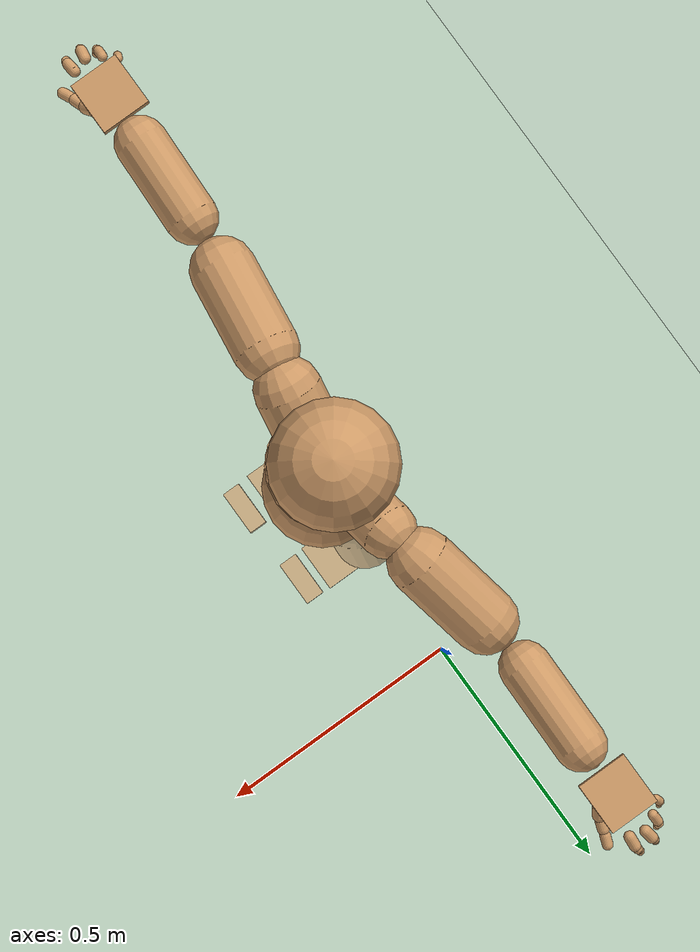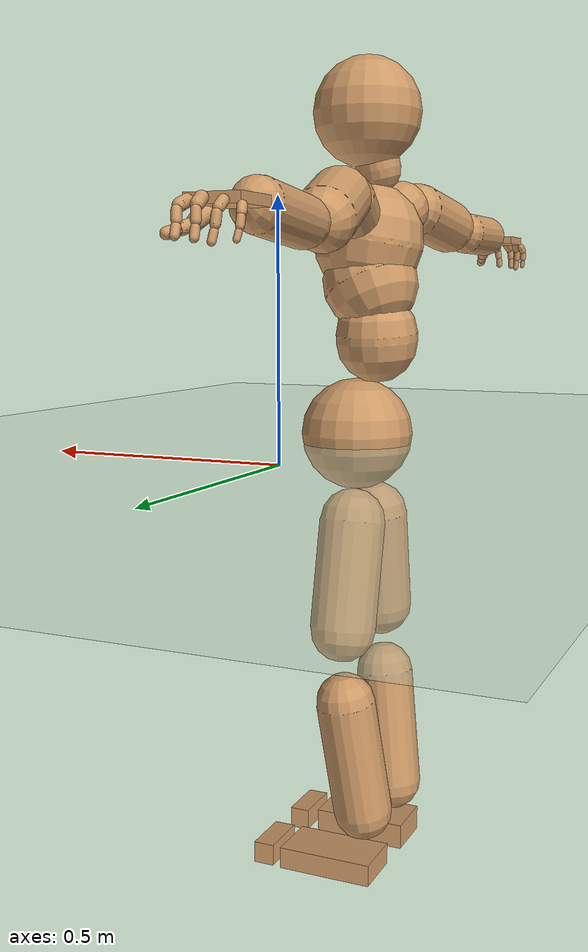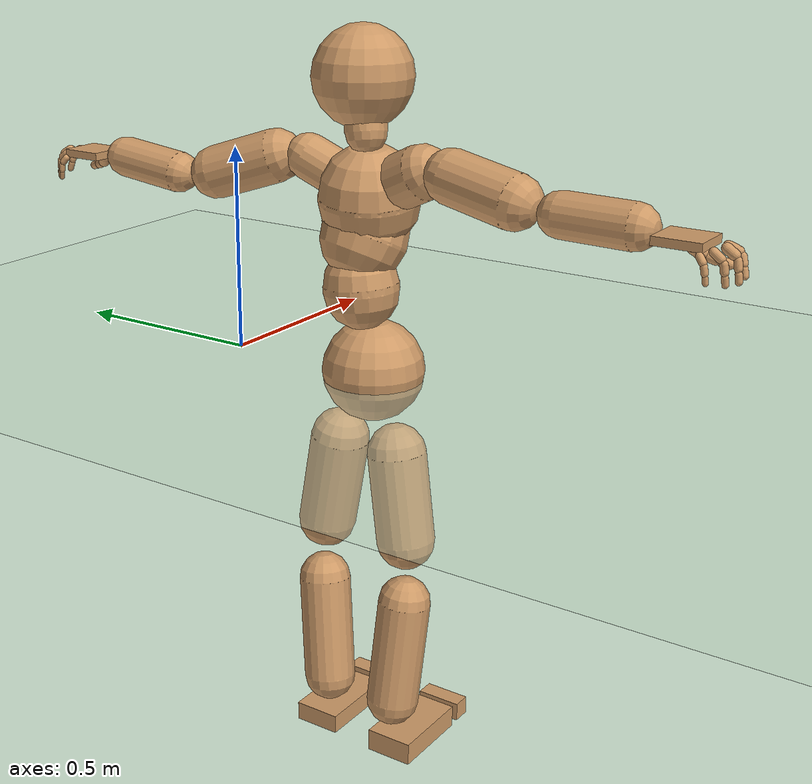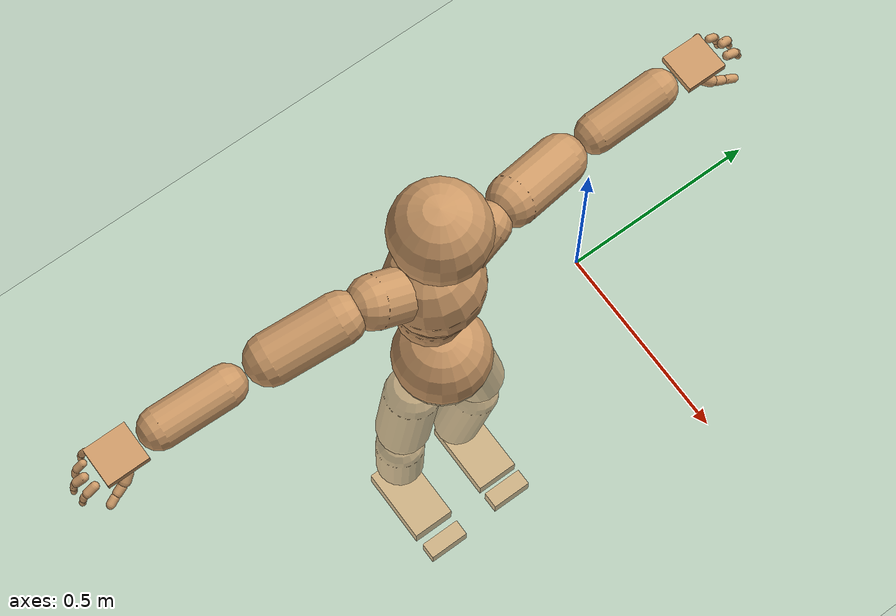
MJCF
<mujoco model="humanoid">
  <compiler coordinate="local"/>
  <default>
    <joint damping="0.0" armature="0.01" stiffness="0.0" limited="true"/>
    <geom conaffinity="1" condim="3" contype="7" margin="0.001" rgba="0.8 0.6 .4 1"/>
  </default>
  <asset>
    <texture type="skybox" builtin="gradient" rgb1=".4 .5 .6" rgb2="0 0 0" width="100" height="100"/>
    <texture builtin="flat" height="1278" mark="cross" markrgb="1 1 1" name="texgeom" random="0.01" rgb1="0.8 0.6 0.4" rgb2="0.8 0.6 0.4" type="cube" width="127"/>
    <texture builtin="checker" height="100" name="texplane" rgb1="0 0 0" rgb2="0.8 0.8 0.8" type="2d" width="100"/>
    <material name="MatPlane" reflectance="0.5" shininess="1" specular="1" texrepeat="60 60" texture="texplane"/>
    <material name="geom" texture="texgeom" texuniform="true"/>
  </asset>
  <worldbody>
    <light cutoff="100" diffuse="1 1 1" dir="-0 0 -1.3" directional="true" exponent="1" pos="0 0 1.3" specular=".1 .1 .1"/>
    <geom conaffinity="1" condim="3" name="floor" pos="0 0 0" rgba="0.8 0.9 0.8 1" size="100 100 .2" type="plane" material="MatPlane"/>
    <body name="Pelvis" pos="0.0019 -0.3994 0.0187">
      <freejoint name="Pelvis"/>
      <geom type="sphere" contype="1" conaffinity="1" density="500" size="0.1220" pos="0.0000 0.0000 0.0000" name="Pelvis"/>
      <body name="L_Hip" pos="-0.0244 0.0655 -0.1033">
        <joint name="L_Hip_x" type="hinge" pos="0 0 0" axis="1 0 0" user="250 2.5 1 500 10 2" armature="0.01" range="-180.0000 180.0000" damping="0" stiffness="0"/>
        <joint name="L_Hip_y" type="hinge" pos="0 0 0" axis="0 1 0" user="250 2.5 1 500 10 2" armature="0.01" range="-180.0000 180.0000" damping="0" stiffness="0"/>
        <joint name="L_Hip_z" type="hinge" pos="0 0 0" axis="0 0 1" user="250 2.5 1 500 10 2" armature="0.01" range="-180.0000 180.0000" damping="0" stiffness="0"/>
        <geom type="capsule" contype="1" conaffinity="1" density="500" fromto="0.0012 0.0141 -0.0769 0.0050 0.0564 -0.3074" size="0.0709" name="L_Hip"/>
        <body name="L_Knee" pos="0.0062 0.0706 -0.3843">
          <joint name="L_Knee_x" type="hinge" pos="0 0 0" axis="1 0 0" user="250 2.5 1 500 10 2" armature="0.01" range="-180.0000 180.0000" damping="0" stiffness="0"/>
          <joint name="L_Knee_y" type="hinge" pos="0 0 0" axis="0 1 0" user="250 2.5 1 500 10 2" armature="0.01" range="-180.0000 180.0000" damping="0" stiffness="0"/>
          <joint name="L_Knee_z" type="hinge" pos="0 0 0" axis="0 0 1" user="250 2.5 1 500 10 2" armature="0.01" range="-180.0000 180.0000" damping="0" stiffness="0"/>
          <geom type="capsule" contype="1" conaffinity="1" density="500" fromto="-0.0095 -0.0115 -0.0853 -0.0382 -0.0459 -0.3411" size="0.0643" name="L_Knee"/>
          <body name="L_Ankle" pos="-0.0477 -0.0574 -0.4264">
            <joint name="L_Ankle_x" type="hinge" pos="0 0 0" axis="1 0 0" user="150 2.5 1 500 10 2" armature="0.01" range="-180.0000 180.0000" damping="0" stiffness="0"/>
            <joint name="L_Ankle_y" type="hinge" pos="0 0 0" axis="0 1 0" user="150 2.5 1 500 10 2" armature="0.01" range="-180.0000 180.0000" damping="0" stiffness="0"/>
            <joint name="L_Ankle_z" type="hinge" pos="0 0 0" axis="0 0 1" user="150 2.5 1 500 10 2" armature="0.01" range="-180.0000 180.0000" damping="0" stiffness="0"/>
            <geom type="box" contype="1" conaffinity="1" density="500" pos="0.0734 0.0245 -0.0311" size="0.1053 0.0589 0.0237" quat="1.0000 0.0000 0.0000 0.0000" name="L_Ankle"/>
            <body name="L_Toe" pos="0.1468 0.0491 -0.0621">
              <joint name="L_Toe_x" type="hinge" pos="0 0 0" axis="1 0 0" user="150 1 1 500 1 1" armature="0.01" range="-180.0000 180.0000" damping="0" stiffness="0"/>
              <joint name="L_Toe_y" type="hinge" pos="0 0 0" axis="0 1 0" user="150 1 1 500 1 1" armature="0.01" range="-180.0000 180.0000" damping="0" stiffness="0"/>
              <joint name="L_Toe_z" type="hinge" pos="0 0 0" axis="0 0 1" user="150 1 1 500 1 1" armature="0.01" range="-180.0000 180.0000" damping="0" stiffness="0"/>
              <geom type="box" contype="1" conaffinity="1" density="500" pos="0.0744 -0.0245 0.0311" size="0.0234 0.0567 0.0237" quat="1.0000 0.0000 0.0000 0.0000" name="L_Toe"/>
            </body>
          </body>
        </body>
      </body>
      <body name="R_Hip" pos="-0.0152 -0.068 -0.1155">
        <joint name="R_Hip_x" type="hinge" pos="0 0 0" axis="1 0 0" user="250 2.5 1 500 10 2" armature="0.01" range="-180.0000 180.0000" damping="0" stiffness="0"/>
        <joint name="R_Hip_y" type="hinge" pos="0 0 0" axis="0 1 0" user="250 2.5 1 500 10 2" armature="0.01" range="-180.0000 180.0000" damping="0" stiffness="0"/>
        <joint name="R_Hip_z" type="hinge" pos="0 0 0" axis="0 0 1" user="250 2.5 1 500 10 2" armature="0.01" range="-180.0000 180.0000" damping="0" stiffness="0"/>
        <geom type="capsule" contype="1" conaffinity="1" density="500" fromto="-0.0008 -0.0101 -0.0734 -0.0031 -0.0404 -0.2934" size="0.0709" name="R_Hip"/>
        <body name="R_Knee" pos="-0.0038 -0.0504 -0.3668">
          <joint name="R_Knee_x" type="hinge" pos="0 0 0" axis="1 0 0" user="250 2.5 1 500 10 2" armature="0.01" range="-180.0000 180.0000" damping="0" stiffness="0"/>
          <joint name="R_Knee_y" type="hinge" pos="0 0 0" axis="0 1 0" user="250 2.5 1 500 10 2" armature="0.01" range="-180.0000 180.0000" damping="0" stiffness="0"/>
          <joint name="R_Knee_z" type="hinge" pos="0 0 0" axis="0 0 1" user="250 2.5 1 500 10 2" armature="0.01" range="-180.0000 180.0000" damping="0" stiffness="0"/>
          <geom type="capsule" contype="1" conaffinity="1" density="500" fromto="-0.0093 0.0044 -0.0879 -0.0372 0.0174 -0.3515" size="0.0644" name="R_Knee"/>
          <body name="R_Ankle" pos="-0.0465 0.0218 -0.4394">
            <joint name="R_Ankle_x" type="hinge" pos="0 0 0" axis="1 0 0" user="150 1 1 500 10 2" armature="0.01" range="-180.0000 180.0000" damping="0" stiffness="0"/>
            <joint name="R_Ankle_y" type="hinge" pos="0 0 0" axis="0 1 0" user="150 1 1 500 10 2" armature="0.01" range="-180.0000 180.0000" damping="0" stiffness="0"/>
            <joint name="R_Ankle_z" type="hinge" pos="0 0 0" axis="0 0 1" user="150 1 1 500 10 2" armature="0.01" range="-180.0000 180.0000" damping="0" stiffness="0"/>
            <geom type="box" contype="1" conaffinity="1" density="500" pos="0.0772 -0.0185 -0.0304" size="0.1053 0.0589 0.0281" quat="1.0000 0.0000 0.0000 0.0000" name="R_Ankle"/>
            <body name="R_Toe" pos="0.1543 -0.0371 -0.0608">
              <joint name="R_Toe_x" type="hinge" pos="0 0 0" axis="1 0 0" user="150 1 1 500 1 1" armature="0.01" range="-180.0000 180.0000" damping="0" stiffness="0"/>
              <joint name="R_Toe_y" type="hinge" pos="0 0 0" axis="0 1 0" user="150 1 1 500 1 1" armature="0.01" range="-180.0000 180.0000" damping="0" stiffness="0"/>
              <joint name="R_Toe_z" type="hinge" pos="0 0 0" axis="0 0 1" user="150 1 1 500 1 1" armature="0.01" range="-180.0000 180.0000" damping="0" stiffness="0"/>
              <geom type="box" contype="1" conaffinity="1" density="500" pos="0.0782 0.0185 0.0260" size="0.0228 0.0567 0.0237" quat="1.0000 0.0000 0.0000 0.0000" name="R_Toe"/>
            </body>
          </body>
        </body>
      </body>
      <body name="Torso" pos="-0.0468 -0.0042 0.1262">
        <joint name="Torso_x" type="hinge" pos="0 0 0" axis="1 0 0" user="500 5 1 500 10 2" armature="0.01" range="-180.0000 180.0000" damping="0" stiffness="0"/>
        <joint name="Torso_y" type="hinge" pos="0 0 0" axis="0 1 0" user="500 5 1 500 10 2" armature="0.01" range="-180.0000 180.0000" damping="0" stiffness="0"/>
        <joint name="Torso_z" type="hinge" pos="0 0 0" axis="0 0 1" user="500 5 1 500 10 2" armature="0.01" range="-180.0000 180.0000" damping="0" stiffness="0"/>
        <geom type="capsule" contype="1" conaffinity="1" density="500" fromto="0.0001 0.0073 0.0756 0.0001 0.0090 0.0924" size="0.0884" name="Torso"/>
        <body name="Spine" pos="0.0002 0.0163 0.1681">
          <joint name="Spine_x" type="hinge" pos="0 0 0" axis="1 0 0" user="500 5 1 500 10 2" armature="0.01" range="-180.0000 180.0000" damping="0" stiffness="0"/>
          <joint name="Spine_y" type="hinge" pos="0 0 0" axis="0 1 0" user="500 5 1 500 10 2" armature="0.01" range="-180.0000 180.0000" damping="0" stiffness="0"/>
          <joint name="Spine_z" type="hinge" pos="0 0 0" axis="0 0 1" user="500 5 1 500 10 2" armature="0.01" range="-180.0000 180.0000" damping="0" stiffness="0"/>
          <geom type="capsule" contype="1" conaffinity="1" density="500" fromto="0.0134 -0.0050 0.0291 0.0164 -0.0061 0.0356" size="0.1022" name="Spine"/>
          <body name="Chest" pos="0.0298 -0.0111 0.0647">
            <joint name="Chest_x" type="hinge" pos="0 0 0" axis="1 0 0" user="500 5 1 500 10 2" armature="0.01" range="-180.0000 180.0000" damping="0" stiffness="0"/>
            <joint name="Chest_y" type="hinge" pos="0 0 0" axis="0 1 0" user="500 5 1 500 10 2" armature="0.01" range="-180.0000 180.0000" damping="0" stiffness="0"/>
            <joint name="Chest_z" type="hinge" pos="0 0 0" axis="0 0 1" user="500 5 1 500 10 2" armature="0.01" range="-180.0000 180.0000" damping="0" stiffness="0"/>
            <geom type="capsule" contype="1" conaffinity="1" density="500" fromto="-0.0067 -0.0028 0.0506 -0.0082 -0.0035 0.0618" size="0.1172" name="Chest"/>
            <body name="Neck" pos="-0.0313 -0.0117 0.1742">
              <joint name="Neck_x" type="hinge" pos="0 0 0" axis="1 0 0" user="150 1 1 250 50 4" armature="0.01" range="-180.0000 180.0000" damping="0" stiffness="0"/>
              <joint name="Neck_y" type="hinge" pos="0 0 0" axis="0 1 0" user="150 1 1 250 50 4" armature="0.01" range="-180.0000 180.0000" damping="0" stiffness="0"/>
              <joint name="Neck_z" type="hinge" pos="0 0 0" axis="0 0 1" user="150 1 1 250 50 4" armature="0.01" range="-180.0000 180.0000" damping="0" stiffness="0"/>
              <geom type="capsule" contype="1" conaffinity="1" density="500" fromto="0.0045 0.0052 0.0293 0.0178 0.0210 0.1173" size="0.0479" name="Neck"/>
              <body name="Head" pos="0.0223 0.0262 0.1466">
                <joint name="Head_x" type="hinge" pos="0 0 0" axis="1 0 0" user="150 1 1 250 50 4" armature="0.01" range="-180.0000 180.0000" damping="0" stiffness="0"/>
                <joint name="Head_y" type="hinge" pos="0 0 0" axis="0 1 0" user="150 1 1 250 50 4" armature="0.01" range="-180.0000 180.0000" damping="0" stiffness="0"/>
                <joint name="Head_z" type="hinge" pos="0 0 0" axis="0 0 1" user="150 1 1 250 50 4" armature="0.01" range="-180.0000 180.0000" damping="0" stiffness="0"/>
                <geom type="sphere" contype="1" conaffinity="1" density="500" size="0.1149" pos="0.0000 0.0000 0.0000" name="Head"/>
              </body>
            </body>
            <body name="L_Thorax" pos="-0.005 0.0407 0.081">
              <joint name="L_Thorax_x" type="hinge" pos="0 0 0" axis="1 0 0" user="200 2 1 500 50 4" armature="0.01" range="-180.0000 180.0000" damping="0" stiffness="0"/>
              <joint name="L_Thorax_y" type="hinge" pos="0 0 0" axis="0 1 0" user="200 2 1 500 50 4" armature="0.01" range="-180.0000 180.0000" damping="0" stiffness="0"/>
              <joint name="L_Thorax_z" type="hinge" pos="0 0 0" axis="0 0 1" user="200 2 1 500 50 4" armature="0.01" range="-180.0000 180.0000" damping="0" stiffness="0"/>
              <geom type="capsule" contype="1" conaffinity="1" density="500" fromto="-0.0046 0.0280 0.0130 -0.0182 0.1120 0.0521" size="0.0533" name="L_Thorax"/>
              <body name="L_Shoulder" pos="-0.0228 0.14 0.0651">
                <joint name="L_Shoulder_x" type="hinge" pos="0 0 0" axis="1 0 0" user="200 2 1 500 50 4" armature="0.01" range="-180.0000 180.0000" damping="0" stiffness="0"/>
                <joint name="L_Shoulder_y" type="hinge" pos="0 0 0" axis="0 1 0" user="200 2 1 500 50 4" armature="0.01" range="-180.0000 180.0000" damping="0" stiffness="0"/>
                <joint name="L_Shoulder_z" type="hinge" pos="0 0 0" axis="0 0 1" user="200 2 1 500 50 4" armature="0.01" range="-180.0000 180.0000" damping="0" stiffness="0"/>
                <geom type="capsule" contype="1" conaffinity="1" density="500" fromto="-0.0106 0.0513 -0.0171 -0.0424 0.2051 -0.0684" size="0.0619" name="L_Shoulder"/>
                <body name="L_Elbow" pos="-0.0531 0.2564 -0.0855">
                  <joint name="L_Elbow_x" type="hinge" pos="0 0 0" axis="1 0 0" user="150 1 1 150 10 2" armature="0.01" range="-720.0000 720.0000" damping="0" stiffness="0"/>
                  <joint name="L_Elbow_y" type="hinge" pos="0 0 0" axis="0 1 0" user="150 1 1 150 10 2" armature="0.01" range="-720.0000 720.0000" damping="0" stiffness="0"/>
                  <joint name="L_Elbow_z" type="hinge" pos="0 0 0" axis="0 0 1" user="150 1 1 150 10 2" armature="0.01" range="-720.0000 720.0000" damping="0" stiffness="0"/>
                  <geom type="capsule" contype="1" conaffinity="1" density="500" fromto="0.0008 0.0568 0.0060 0.0030 0.2272 0.0238" size="0.0481" name="L_Elbow"/>
                  <body name="L_Wrist" pos="0.0038 0.284 0.0298">
                    <joint name="L_Wrist_x" type="hinge" pos="0 0 0" axis="1 0 0" user="100 1 1 150 1 1" armature="0.01" range="-180.0000 180.0000" damping="0" stiffness="0"/>
                    <joint name="L_Wrist_y" type="hinge" pos="0 0 0" axis="0 1 0" user="100 1 1 150 1 1" armature="0.01" range="-180.0000 180.0000" damping="0" stiffness="0"/>
                    <joint name="L_Wrist_z" type="hinge" pos="0 0 0" axis="0 0 1" user="100 1 1 150 1 1" armature="0.01" range="-180.0000 180.0000" damping="0" stiffness="0"/>
                    <geom type="box" contype="1" conaffinity="1" density="500" pos="-0.0033 0.0500 -0.0060" size="0.0491 0.0509 0.0092" quat="1.0000 0.0000 0.0000 0.0000" name="L_Wrist"/>
                    <body name="L_Index1" pos="0.0241 0.1178 -0.0089">
                      <joint name="L_Index1_x" type="hinge" pos="0 0 0" axis="1 0 0" user="100 10 1 150" armature="0.01" range="-180.0000 180.0000" damping="0" stiffness="0"/>
                      <joint name="L_Index1_y" type="hinge" pos="0 0 0" axis="0 1 0" user="100 10 1 150" armature="0.01" range="-180.0000 180.0000" damping="0" stiffness="0"/>
                      <joint name="L_Index1_z" type="hinge" pos="0 0 0" axis="0 0 1" user="100 10 1 150" armature="0.01" range="-180.0000 180.0000" damping="0" stiffness="0"/>
                      <geom type="capsule" contype="1" conaffinity="1" density="500" fromto="0.0004 0.0068 -0.0026 0.0018 0.0271 -0.0105" size="0.0107" name="L_Index1"/>
                      <body name="L_Index2" pos="0.0022 0.0339 -0.0131">
                        <joint name="L_Index2_x" type="hinge" pos="0 0 0" axis="1 0 0" user="100 10 1 150" armature="0.01" range="-180.0000 180.0000" damping="0" stiffness="0"/>
                        <joint name="L_Index2_y" type="hinge" pos="0 0 0" axis="0 1 0" user="100 10 1 150" armature="0.01" range="-180.0000 180.0000" damping="0" stiffness="0"/>
                        <joint name="L_Index2_z" type="hinge" pos="0 0 0" axis="0 0 1" user="100 10 1 150" armature="0.01" range="-180.0000 180.0000" damping="0" stiffness="0"/>
                        <geom type="capsule" contype="1" conaffinity="1" density="500" fromto="-0.0006 0.0014 -0.0049 -0.0025 0.0055 -0.0194" size="0.0085" name="L_Index2"/>
                        <body name="L_Index3" pos="-0.0031 0.0068 -0.0243">
                          <joint name="L_Index3_x" type="hinge" pos="0 0 0" axis="1 0 0" user="100 10 1 150" armature="0.01" range="-180.0000 180.0000" damping="0" stiffness="0"/>
                          <joint name="L_Index3_y" type="hinge" pos="0 0 0" axis="0 1 0" user="100 10 1 150" armature="0.01" range="-180.0000 180.0000" damping="0" stiffness="0"/>
                          <joint name="L_Index3_z" type="hinge" pos="0 0 0" axis="0 0 1" user="100 10 1 150" armature="0.01" range="-180.0000 180.0000" damping="0" stiffness="0"/>
                          <geom type="capsule" contype="1" conaffinity="1" density="500" fromto="-0.0002 0.0018 -0.0045 -0.0009 0.0071 -0.0178" size="0.0077" name="L_Index3"/>
                        </body>
                      </body>
                    </body>
                    <body name="L_Middle1" pos="-0.0034 0.1265 -0.0053">
                      <joint name="L_Middle1_x" type="hinge" pos="0 0 0" axis="1 0 0" user="100 10 1 150" armature="0.01" range="-180.0000 180.0000" damping="0" stiffness="0"/>
                      <joint name="L_Middle1_y" type="hinge" pos="0 0 0" axis="0 1 0" user="100 10 1 150" armature="0.01" range="-180.0000 180.0000" damping="0" stiffness="0"/>
                      <joint name="L_Middle1_z" type="hinge" pos="0 0 0" axis="0 0 1" user="100 10 1 150" armature="0.01" range="-180.0000 180.0000" damping="0" stiffness="0"/>
                      <geom type="capsule" contype="1" conaffinity="1" density="500" fromto="-0.0010 0.0059 -0.0034 -0.0041 0.0238 -0.0137" size="0.0109" name="L_Middle1"/>
                      <body name="L_Middle2" pos="-0.0051 0.0297 -0.0171">
                        <joint name="L_Middle2_x" type="hinge" pos="0 0 0" axis="1 0 0" user="100 10 1 150" armature="0.01" range="-180.0000 180.0000" damping="0" stiffness="0"/>
                        <joint name="L_Middle2_y" type="hinge" pos="0 0 0" axis="0 1 0" user="100 10 1 150" armature="0.01" range="-180.0000 180.0000" damping="0" stiffness="0"/>
                        <joint name="L_Middle2_z" type="hinge" pos="0 0 0" axis="0 0 1" user="100 10 1 150" armature="0.01" range="-180.0000 180.0000" damping="0" stiffness="0"/>
                        <geom type="capsule" contype="1" conaffinity="1" density="500" fromto="-0.0004 0.0010 -0.0052 -0.0017 0.0040 -0.0209" size="0.0082" name="L_Middle2"/>
                        <body name="L_Middle3" pos="-0.0021 0.005 -0.0262">
                          <joint name="L_Middle3_x" type="hinge" pos="0 0 0" axis="1 0 0" user="100 10 1 150" armature="0.01" range="-180.0000 180.0000" damping="0" stiffness="0"/>
                          <joint name="L_Middle3_y" type="hinge" pos="0 0 0" axis="0 1 0" user="100 10 1 150" armature="0.01" range="-180.0000 180.0000" damping="0" stiffness="0"/>
                          <joint name="L_Middle3_z" type="hinge" pos="0 0 0" axis="0 0 1" user="100 10 1 150" armature="0.01" range="-180.0000 180.0000" damping="0" stiffness="0"/>
                          <geom type="capsule" contype="1" conaffinity="1" density="500" fromto="-0.0000 0.0014 -0.0048 -0.0001 0.0056 -0.0193" size="0.0074" name="L_Middle3"/>
                        </body>
                      </body>
                    </body>
                    <body name="L_Pinky1" pos="-0.0525 0.0965 -0.0153">
                      <joint name="L_Pinky1_x" type="hinge" pos="0 0 0" axis="1 0 0" user="100 10 1 150" armature="0.01" range="-180.0000 180.0000" damping="0" stiffness="0"/>
                      <joint name="L_Pinky1_y" type="hinge" pos="0 0 0" axis="0 1 0" user="100 10 1 150" armature="0.01" range="-180.0000 180.0000" damping="0" stiffness="0"/>
                      <joint name="L_Pinky1_z" type="hinge" pos="0 0 0" axis="0 0 1" user="100 10 1 150" armature="0.01" range="-180.0000 180.0000" damping="0" stiffness="0"/>
                      <geom type="capsule" contype="1" conaffinity="1" density="500" fromto="-0.0010 0.0027 -0.0034 -0.0041 0.0108 -0.0137" size="0.0081" name="L_Pinky1"/>
                      <body name="L_Pinky2" pos="-0.0051 0.0136 -0.0171">
                        <joint name="L_Pinky2_x" type="hinge" pos="0 0 0" axis="1 0 0" user="100 10 1 150" armature="0.01" range="-180.0000 180.0000" damping="0" stiffness="0"/>
                        <joint name="L_Pinky2_y" type="hinge" pos="0 0 0" axis="0 1 0" user="100 10 1 150" armature="0.01" range="-180.0000 180.0000" damping="0" stiffness="0"/>
                        <joint name="L_Pinky2_z" type="hinge" pos="0 0 0" axis="0 0 1" user="100 10 1 150" armature="0.01" range="-180.0000 180.0000" damping="0" stiffness="0"/>
                        <geom type="capsule" contype="1" conaffinity="1" density="500" fromto="0.0002 0.0008 -0.0042 0.0008 0.0030 -0.0169" size="0.0072" name="L_Pinky2"/>
                        <body name="L_Pinky3" pos="0.0011 0.0038 -0.0212">
                          <joint name="L_Pinky3_x" type="hinge" pos="0 0 0" axis="1 0 0" user="100 10 1 150" armature="0.01" range="-180.0000 180.0000" damping="0" stiffness="0"/>
                          <joint name="L_Pinky3_y" type="hinge" pos="0 0 0" axis="0 1 0" user="100 10 1 150" armature="0.01" range="-180.0000 180.0000" damping="0" stiffness="0"/>
                          <joint name="L_Pinky3_z" type="hinge" pos="0 0 0" axis="0 0 1" user="100 10 1 150" armature="0.01" range="-180.0000 180.0000" damping="0" stiffness="0"/>
                          <geom type="capsule" contype="1" conaffinity="1" density="500" fromto="0.0006 0.0012 -0.0038 0.0024 0.0046 -0.0153" size="0.0057" name="L_Pinky3"/>
                        </body>
                      </body>
                    </body>
                    <body name="L_Ring1" pos="-0.0321 0.1123 -0.0085">
                      <joint name="L_Ring1_x" type="hinge" pos="0 0 0" axis="1 0 0" user="100 10 1 150" armature="0.01" range="-180.0000 180.0000" damping="0" stiffness="0"/>
                      <joint name="L_Ring1_y" type="hinge" pos="0 0 0" axis="0 1 0" user="100 10 1 150" armature="0.01" range="-180.0000 180.0000" damping="0" stiffness="0"/>
                      <joint name="L_Ring1_z" type="hinge" pos="0 0 0" axis="0 0 1" user="100 10 1 150" armature="0.01" range="-180.0000 180.0000" damping="0" stiffness="0"/>
                      <geom type="capsule" contype="1" conaffinity="1" density="500" fromto="-0.0002 0.0053 -0.0037 -0.0010 0.0212 -0.0149" size="0.0093" name="L_Ring1"/>
                      <body name="L_Ring2" pos="-0.0012 0.0265 -0.0187">
                        <joint name="L_Ring2_x" type="hinge" pos="0 0 0" axis="1 0 0" user="100 10 1 150" armature="0.01" range="-180.0000 180.0000" damping="0" stiffness="0"/>
                        <joint name="L_Ring2_y" type="hinge" pos="0 0 0" axis="0 1 0" user="100 10 1 150" armature="0.01" range="-180.0000 180.0000" damping="0" stiffness="0"/>
                        <joint name="L_Ring2_z" type="hinge" pos="0 0 0" axis="0 0 1" user="100 10 1 150" armature="0.01" range="-180.0000 180.0000" damping="0" stiffness="0"/>
                        <geom type="capsule" contype="1" conaffinity="1" density="500" fromto="0.0004 0.0008 -0.0052 0.0014 0.0033 -0.0210" size="0.0083" name="L_Ring2"/>
                        <body name="L_Ring3" pos="0.0018 0.0041 -0.0262">
                          <joint name="L_Ring3_x" type="hinge" pos="0 0 0" axis="1 0 0" user="100 10 1 150" armature="0.01" range="-180.0000 180.0000" damping="0" stiffness="0"/>
                          <joint name="L_Ring3_y" type="hinge" pos="0 0 0" axis="0 1 0" user="100 10 1 150" armature="0.01" range="-180.0000 180.0000" damping="0" stiffness="0"/>
                          <joint name="L_Ring3_z" type="hinge" pos="0 0 0" axis="0 0 1" user="100 10 1 150" armature="0.01" range="-180.0000 180.0000" damping="0" stiffness="0"/>
                          <geom type="capsule" contype="1" conaffinity="1" density="500" fromto="0.0008 0.0012 -0.0048 0.0030 0.0049 -0.0194" size="0.0068" name="L_Ring3"/>
                        </body>
                      </body>
                    </body>
                    <body name="L_Thumb1" pos="0.0312 0.0465 -0.0219">
                      <joint name="L_Thumb1_x" type="hinge" pos="0 0 0" axis="1 0 0" user="100 10 1 150" armature="0.01" range="-180.0000 180.0000" damping="0" stiffness="0"/>
                      <joint name="L_Thumb1_y" type="hinge" pos="0 0 0" axis="0 1 0" user="100 10 1 150" armature="0.01" range="-180.0000 180.0000" damping="0" stiffness="0"/>
                      <joint name="L_Thumb1_z" type="hinge" pos="0 0 0" axis="0 0 1" user="100 10 1 150" armature="0.01" range="-180.0000 180.0000" damping="0" stiffness="0"/>
                      <geom type="capsule" contype="1" conaffinity="1" density="500" fromto="0.0031 0.0049 -0.0040 0.0122 0.0197 -0.0160" size="0.0146" name="L_Thumb1"/>
                      <body name="L_Thumb2" pos="0.0153 0.0246 -0.02">
                        <joint name="L_Thumb2_x" type="hinge" pos="0 0 0" axis="1 0 0" user="100 10 1 150" armature="0.01" range="-180.0000 180.0000" damping="0" stiffness="0"/>
                        <joint name="L_Thumb2_y" type="hinge" pos="0 0 0" axis="0 1 0" user="100 10 1 150" armature="0.01" range="-180.0000 180.0000" damping="0" stiffness="0"/>
                        <joint name="L_Thumb2_z" type="hinge" pos="0 0 0" axis="0 0 1" user="100 10 1 150" armature="0.01" range="-180.0000 180.0000" damping="0" stiffness="0"/>
                        <geom type="capsule" contype="1" conaffinity="1" density="500" fromto="0.0017 0.0053 -0.0019 0.0067 0.0212 -0.0077" size="0.0112" name="L_Thumb2"/>
                        <body name="L_Thumb3" pos="0.0084 0.0265 -0.0096">
                          <joint name="L_Thumb3_x" type="hinge" pos="0 0 0" axis="1 0 0" user="100 10 1 150" armature="0.01" range="-180.0000 180.0000" damping="0" stiffness="0"/>
                          <joint name="L_Thumb3_y" type="hinge" pos="0 0 0" axis="0 1 0" user="100 10 1 150" armature="0.01" range="-180.0000 180.0000" damping="0" stiffness="0"/>
                          <joint name="L_Thumb3_z" type="hinge" pos="0 0 0" axis="0 0 1" user="100 10 1 150" armature="0.01" range="-180.0000 180.0000" damping="0" stiffness="0"/>
                          <geom type="capsule" contype="1" conaffinity="1" density="500" fromto="0.0021 0.0057 -0.0015 0.0083 0.0228 -0.0061" size="0.0102" name="L_Thumb3"/>
                        </body>
                      </body>
                    </body>
                  </body>
                </body>
              </body>
            </body>
            <body name="R_Thorax" pos="-0.0086 -0.0479 0.082">
              <joint name="R_Thorax_x" type="hinge" pos="0 0 0" axis="1 0 0" user="200 2 1 150 10 2" armature="0.01" range="-180.0000 180.0000" damping="0" stiffness="0"/>
              <joint name="R_Thorax_y" type="hinge" pos="0 0 0" axis="0 1 0" user="200 2 1 150 10 2" armature="0.01" range="-180.0000 180.0000" damping="0" stiffness="0"/>
              <joint name="R_Thorax_z" type="hinge" pos="0 0 0" axis="0 0 1" user="200 2 1 150 10 2" armature="0.01" range="-180.0000 180.0000" damping="0" stiffness="0"/>
              <geom type="capsule" contype="1" conaffinity="1" density="500" fromto="-0.0041 -0.0259 0.0123 -0.0166 -0.1034 0.0491" size="0.0629" name="R_Thorax"/>
              <body name="R_Shoulder" pos="-0.0207 -0.1293 0.0614">
                <joint name="R_Shoulder_x" type="hinge" pos="0 0 0" axis="1 0 0" user="200 2 1 250 10 2" armature="0.01" range="-180.0000 180.0000" damping="0" stiffness="0"/>
                <joint name="R_Shoulder_y" type="hinge" pos="0 0 0" axis="0 1 0" user="200 2 1 250 10 2" armature="0.01" range="-180.0000 180.0000" damping="0" stiffness="0"/>
                <joint name="R_Shoulder_z" type="hinge" pos="0 0 0" axis="0 0 1" user="200 2 1 250 10 2" armature="0.01" range="-180.0000 180.0000" damping="0" stiffness="0"/>
                <geom type="capsule" contype="1" conaffinity="1" density="500" fromto="-0.0073 -0.0549 -0.0096 -0.0293 -0.2196 -0.0383" size="0.0614" name="R_Shoulder"/>
                <body name="R_Elbow" pos="-0.0366 -0.2745 -0.0479">
                  <joint name="R_Elbow_x" type="hinge" pos="0 0 0" axis="1 0 0" user="150 1 1 150 10 2" armature="0.01" range="-720.0000 720.0000" damping="0" stiffness="0"/>
                  <joint name="R_Elbow_y" type="hinge" pos="0 0 0" axis="0 1 0" user="150 1 1 150 10 2" armature="0.01" range="-720.0000 720.0000" damping="0" stiffness="0"/>
                  <joint name="R_Elbow_z" type="hinge" pos="0 0 0" axis="0 0 1" user="150 1 1 150 10 2" armature="0.01" range="-720.0000 720.0000" damping="0" stiffness="0"/>
                  <geom type="capsule" contype="1" conaffinity="1" density="500" fromto="-0.0020 -0.0552 -0.0002 -0.0080 -0.2207 -0.0009" size="0.0493" name="R_Elbow"/>
                  <body name="R_Wrist" pos="-0.01 -0.2758 -0.0011">
                    <joint name="R_Wrist_x" type="hinge" pos="0 0 0" axis="1 0 0" user="100 1 1 150 1 1" armature="0.01" range="-180.0000 180.0000" damping="0" stiffness="0"/>
                    <joint name="R_Wrist_y" type="hinge" pos="0 0 0" axis="0 1 0" user="100 1 1 150 1 1" armature="0.01" range="-180.0000 180.0000" damping="0" stiffness="0"/>
                    <joint name="R_Wrist_z" type="hinge" pos="0 0 0" axis="0 0 1" user="100 1 1 150 1 1" armature="0.01" range="-180.0000 180.0000" damping="0" stiffness="0"/>
                    <geom type="box" contype="1" conaffinity="1" density="500" pos="-0.0039 -0.0496 -0.0080" size="0.0491 0.0523 0.0093" quat="1.0000 0.0000 0.0000 0.0000" name="R_Wrist"/>
                    <body name="R_Index1" pos="0.0228 -0.1171 -0.0129">
                      <joint name="R_Index1_x" type="hinge" pos="0 0 0" axis="1 0 0" user="100 10 1 150" armature="0.01" range="-180.0000 180.0000" damping="0" stiffness="0"/>
                      <joint name="R_Index1_y" type="hinge" pos="0 0 0" axis="0 1 0" user="100 10 1 150" armature="0.01" range="-180.0000 180.0000" damping="0" stiffness="0"/>
                      <joint name="R_Index1_z" type="hinge" pos="0 0 0" axis="0 0 1" user="100 10 1 150" armature="0.01" range="-180.0000 180.0000" damping="0" stiffness="0"/>
                      <geom type="capsule" contype="1" conaffinity="1" density="500" fromto="0.0004 -0.0068 -0.0026 0.0018 -0.0271 -0.0105" size="0.0107" name="R_Index1"/>
                      <body name="R_Index2" pos="0.0022 -0.0339 -0.0131">
                        <joint name="R_Index2_x" type="hinge" pos="0 0 0" axis="1 0 0" user="100 10 1 150" armature="0.01" range="-180.0000 180.0000" damping="0" stiffness="0"/>
                        <joint name="R_Index2_y" type="hinge" pos="0 0 0" axis="0 1 0" user="100 10 1 150" armature="0.01" range="-180.0000 180.0000" damping="0" stiffness="0"/>
                        <joint name="R_Index2_z" type="hinge" pos="0 0 0" axis="0 0 1" user="100 10 1 150" armature="0.01" range="-180.0000 180.0000" damping="0" stiffness="0"/>
                        <geom type="capsule" contype="1" conaffinity="1" density="500" fromto="-0.0006 -0.0014 -0.0049 -0.0025 -0.0055 -0.0194" size="0.0085" name="R_Index2"/>
                        <body name="R_Index3" pos="-0.0031 -0.0068 -0.0243">
                          <joint name="R_Index3_x" type="hinge" pos="0 0 0" axis="1 0 0" user="100 10 1 150" armature="0.01" range="-180.0000 180.0000" damping="0" stiffness="0"/>
                          <joint name="R_Index3_y" type="hinge" pos="0 0 0" axis="0 1 0" user="100 10 1 150" armature="0.01" range="-180.0000 180.0000" damping="0" stiffness="0"/>
                          <joint name="R_Index3_z" type="hinge" pos="0 0 0" axis="0 0 1" user="100 10 1 150" armature="0.01" range="-180.0000 180.0000" damping="0" stiffness="0"/>
                          <geom type="capsule" contype="1" conaffinity="1" density="500" fromto="-0.0002 -0.0010 -0.0045 -0.0009 -0.0039 -0.0178" size="0.0078" name="R_Index3"/>
                        </body>
                      </body>
                    </body>
                    <body name="R_Middle1" pos="-0.0046 -0.1257 -0.0093">
                      <joint name="R_Middle1_x" type="hinge" pos="0 0 0" axis="1 0 0" user="100 10 1 150" armature="0.01" range="-180.0000 180.0000" damping="0" stiffness="0"/>
                      <joint name="R_Middle1_y" type="hinge" pos="0 0 0" axis="0 1 0" user="100 10 1 150" armature="0.01" range="-180.0000 180.0000" damping="0" stiffness="0"/>
                      <joint name="R_Middle1_z" type="hinge" pos="0 0 0" axis="0 0 1" user="100 10 1 150" armature="0.01" range="-180.0000 180.0000" damping="0" stiffness="0"/>
                      <geom type="capsule" contype="1" conaffinity="1" density="500" fromto="-0.0010 -0.0059 -0.0034 -0.0041 -0.0238 -0.0137" size="0.0109" name="R_Middle1"/>
                      <body name="R_Middle2" pos="-0.0051 -0.0297 -0.0171">
                        <joint name="R_Middle2_x" type="hinge" pos="0 0 0" axis="1 0 0" user="100 10 1 150" armature="0.01" range="-180.0000 180.0000" damping="0" stiffness="0"/>
                        <joint name="R_Middle2_y" type="hinge" pos="0 0 0" axis="0 1 0" user="100 10 1 150" armature="0.01" range="-180.0000 180.0000" damping="0" stiffness="0"/>
                        <joint name="R_Middle2_z" type="hinge" pos="0 0 0" axis="0 0 1" user="100 10 1 150" armature="0.01" range="-180.0000 180.0000" damping="0" stiffness="0"/>
                        <geom type="capsule" contype="1" conaffinity="1" density="500" fromto="-0.0004 -0.0010 -0.0052 -0.0017 -0.0040 -0.0209" size="0.0082" name="R_Middle2"/>
                        <body name="R_Middle3" pos="-0.0021 -0.005 -0.0262">
                          <joint name="R_Middle3_x" type="hinge" pos="0 0 0" axis="1 0 0" user="100 10 1 150" armature="0.01" range="-180.0000 180.0000" damping="0" stiffness="0"/>
                          <joint name="R_Middle3_y" type="hinge" pos="0 0 0" axis="0 1 0" user="100 10 1 150" armature="0.01" range="-180.0000 180.0000" damping="0" stiffness="0"/>
                          <joint name="R_Middle3_z" type="hinge" pos="0 0 0" axis="0 0 1" user="100 10 1 150" armature="0.01" range="-180.0000 180.0000" damping="0" stiffness="0"/>
                          <geom type="capsule" contype="1" conaffinity="1" density="500" fromto="-0.0000 -0.0006 -0.0048 -0.0001 -0.0024 -0.0193" size="0.0074" name="R_Middle3"/>
                        </body>
                      </body>
                    </body>
                    <body name="R_Pinky1" pos="-0.0538 -0.0957 -0.0193">
                      <joint name="R_Pinky1_x" type="hinge" pos="0 0 0" axis="1 0 0" user="100 10 1 150" armature="0.01" range="-180.0000 180.0000" damping="0" stiffness="0"/>
                      <joint name="R_Pinky1_y" type="hinge" pos="0 0 0" axis="0 1 0" user="100 10 1 150" armature="0.01" range="-180.0000 180.0000" damping="0" stiffness="0"/>
                      <joint name="R_Pinky1_z" type="hinge" pos="0 0 0" axis="0 0 1" user="100 10 1 150" armature="0.01" range="-180.0000 180.0000" damping="0" stiffness="0"/>
                      <geom type="capsule" contype="1" conaffinity="1" density="500" fromto="-0.0010 -0.0027 -0.0034 -0.0041 -0.0108 -0.0137" size="0.0081" name="R_Pinky1"/>
                      <body name="R_Pinky2" pos="-0.0051 -0.0136 -0.0171">
                        <joint name="R_Pinky2_x" type="hinge" pos="0 0 0" axis="1 0 0" user="100 10 1 150" armature="0.01" range="-180.0000 180.0000" damping="0" stiffness="0"/>
                        <joint name="R_Pinky2_y" type="hinge" pos="0 0 0" axis="0 1 0" user="100 10 1 150" armature="0.01" range="-180.0000 180.0000" damping="0" stiffness="0"/>
                        <joint name="R_Pinky2_z" type="hinge" pos="0 0 0" axis="0 0 1" user="100 10 1 150" armature="0.01" range="-180.0000 180.0000" damping="0" stiffness="0"/>
                        <geom type="capsule" contype="1" conaffinity="1" density="500" fromto="0.0002 -0.0008 -0.0042 0.0008 -0.0030 -0.0169" size="0.0072" name="R_Pinky2"/>
                        <body name="R_Pinky3" pos="0.0011 -0.0038 -0.0212">
                          <joint name="R_Pinky3_x" type="hinge" pos="0 0 0" axis="1 0 0" user="100 10 1 150" armature="0.01" range="-180.0000 180.0000" damping="0" stiffness="0"/>
                          <joint name="R_Pinky3_y" type="hinge" pos="0 0 0" axis="0 1 0" user="100 10 1 150" armature="0.01" range="-180.0000 180.0000" damping="0" stiffness="0"/>
                          <joint name="R_Pinky3_z" type="hinge" pos="0 0 0" axis="0 0 1" user="100 10 1 150" armature="0.01" range="-180.0000 180.0000" damping="0" stiffness="0"/>
                          <geom type="capsule" contype="1" conaffinity="1" density="500" fromto="0.0006 -0.0004 -0.0038 0.0024 -0.0014 -0.0153" size="0.0058" name="R_Pinky3"/>
                        </body>
                      </body>
                    </body>
                    <body name="R_Ring1" pos="-0.0334 -0.1115 -0.0125">
                      <joint name="R_Ring1_x" type="hinge" pos="0 0 0" axis="1 0 0" user="100 10 1 150" armature="0.01" range="-180.0000 180.0000" damping="0" stiffness="0"/>
                      <joint name="R_Ring1_y" type="hinge" pos="0 0 0" axis="0 1 0" user="100 10 1 150" armature="0.01" range="-180.0000 180.0000" damping="0" stiffness="0"/>
                      <joint name="R_Ring1_z" type="hinge" pos="0 0 0" axis="0 0 1" user="100 10 1 150" armature="0.01" range="-180.0000 180.0000" damping="0" stiffness="0"/>
                      <geom type="capsule" contype="1" conaffinity="1" density="500" fromto="-0.0002 -0.0053 -0.0037 -0.0010 -0.0212 -0.0149" size="0.0093" name="R_Ring1"/>
                      <body name="R_Ring2" pos="-0.0012 -0.0265 -0.0187">
                        <joint name="R_Ring2_x" type="hinge" pos="0 0 0" axis="1 0 0" user="100 10 1 150" armature="0.01" range="-180.0000 180.0000" damping="0" stiffness="0"/>
                        <joint name="R_Ring2_y" type="hinge" pos="0 0 0" axis="0 1 0" user="100 10 1 150" armature="0.01" range="-180.0000 180.0000" damping="0" stiffness="0"/>
                        <joint name="R_Ring2_z" type="hinge" pos="0 0 0" axis="0 0 1" user="100 10 1 150" armature="0.01" range="-180.0000 180.0000" damping="0" stiffness="0"/>
                        <geom type="capsule" contype="1" conaffinity="1" density="500" fromto="0.0004 -0.0008 -0.0052 0.0014 -0.0033 -0.0210" size="0.0084" name="R_Ring2"/>
                        <body name="R_Ring3" pos="0.0018 -0.0041 -0.0262">
                          <joint name="R_Ring3_x" type="hinge" pos="0 0 0" axis="1 0 0" user="100 10 1 150" armature="0.01" range="-180.0000 180.0000" damping="0" stiffness="0"/>
                          <joint name="R_Ring3_y" type="hinge" pos="0 0 0" axis="0 1 0" user="100 10 1 150" armature="0.01" range="-180.0000 180.0000" damping="0" stiffness="0"/>
                          <joint name="R_Ring3_z" type="hinge" pos="0 0 0" axis="0 0 1" user="100 10 1 150" armature="0.01" range="-180.0000 180.0000" damping="0" stiffness="0"/>
                          <geom type="capsule" contype="1" conaffinity="1" density="500" fromto="0.0008 -0.0004 -0.0048 0.0030 -0.0017 -0.0194" size="0.0069" name="R_Ring3"/>
                        </body>
                      </body>
                    </body>
                    <body name="R_Thumb1" pos="0.03 -0.0457 -0.0258">
                      <joint name="R_Thumb1_x" type="hinge" pos="0 0 0" axis="1 0 0" user="100 10 1 150" armature="0.01" range="-180.0000 180.0000" damping="0" stiffness="0"/>
                      <joint name="R_Thumb1_y" type="hinge" pos="0 0 0" axis="0 1 0" user="100 10 1 150" armature="0.01" range="-180.0000 180.0000" damping="0" stiffness="0"/>
                      <joint name="R_Thumb1_z" type="hinge" pos="0 0 0" axis="0 0 1" user="100 10 1 150" armature="0.01" range="-180.0000 180.0000" damping="0" stiffness="0"/>
                      <geom type="capsule" contype="1" conaffinity="1" density="500" fromto="0.0031 -0.0049 -0.0040 0.0122 -0.0197 -0.0160" size="0.0146" name="R_Thumb1"/>
                      <body name="R_Thumb2" pos="0.0153 -0.0246 -0.02">
                        <joint name="R_Thumb2_x" type="hinge" pos="0 0 0" axis="1 0 0" user="100 10 1 150" armature="0.01" range="-180.0000 180.0000" damping="0" stiffness="0"/>
                        <joint name="R_Thumb2_y" type="hinge" pos="0 0 0" axis="0 1 0" user="100 10 1 150" armature="0.01" range="-180.0000 180.0000" damping="0" stiffness="0"/>
                        <joint name="R_Thumb2_z" type="hinge" pos="0 0 0" axis="0 0 1" user="100 10 1 150" armature="0.01" range="-180.0000 180.0000" damping="0" stiffness="0"/>
                        <geom type="capsule" contype="1" conaffinity="1" density="500" fromto="0.0017 -0.0053 -0.0019 0.0067 -0.0212 -0.0077" size="0.0112" name="R_Thumb2"/>
                        <body name="R_Thumb3" pos="0.0084 -0.0265 -0.0096">
                          <joint name="R_Thumb3_x" type="hinge" pos="0 0 0" axis="1 0 0" user="100 10 1 150" armature="0.01" range="-180.0000 180.0000" damping="0" stiffness="0"/>
                          <joint name="R_Thumb3_y" type="hinge" pos="0 0 0" axis="0 1 0" user="100 10 1 150" armature="0.01" range="-180.0000 180.0000" damping="0" stiffness="0"/>
                          <joint name="R_Thumb3_z" type="hinge" pos="0 0 0" axis="0 0 1" user="100 10 1 150" armature="0.01" range="-180.0000 180.0000" damping="0" stiffness="0"/>
                          <geom type="capsule" contype="1" conaffinity="1" density="500" fromto="0.0021 -0.0049 -0.0015 0.0083 -0.0196 -0.0061" size="0.0105" name="R_Thumb3"/>
                        </body>
                      </body>
                    </body>
                  </body>
                </body>
              </body>
            </body>
          </body>
        </body>
      </body>
    </body>
  </worldbody>
  <actuator>
    <motor name="L_Hip_x" joint="L_Hip_x" gear="1"/>
    <motor name="L_Hip_y" joint="L_Hip_y" gear="1"/>
    <motor name="L_Hip_z" joint="L_Hip_z" gear="1"/>
    <motor name="L_Knee_x" joint="L_Knee_x" gear="1"/>
    <motor name="L_Knee_y" joint="L_Knee_y" gear="1"/>
    <motor name="L_Knee_z" joint="L_Knee_z" gear="1"/>
    <motor name="L_Ankle_x" joint="L_Ankle_x" gear="1"/>
    <motor name="L_Ankle_y" joint="L_Ankle_y" gear="1"/>
    <motor name="L_Ankle_z" joint="L_Ankle_z" gear="1"/>
    <motor name="L_Toe_x" joint="L_Toe_x" gear="1"/>
    <motor name="L_Toe_y" joint="L_Toe_y" gear="1"/>
    <motor name="L_Toe_z" joint="L_Toe_z" gear="1"/>
    <motor name="R_Hip_x" joint="R_Hip_x" gear="1"/>
    <motor name="R_Hip_y" joint="R_Hip_y" gear="1"/>
    <motor name="R_Hip_z" joint="R_Hip_z" gear="1"/>
    <motor name="R_Knee_x" joint="R_Knee_x" gear="1"/>
    <motor name="R_Knee_y" joint="R_Knee_y" gear="1"/>
    <motor name="R_Knee_z" joint="R_Knee_z" gear="1"/>
    <motor name="R_Ankle_x" joint="R_Ankle_x" gear="1"/>
    <motor name="R_Ankle_y" joint="R_Ankle_y" gear="1"/>
    <motor name="R_Ankle_z" joint="R_Ankle_z" gear="1"/>
    <motor name="R_Toe_x" joint="R_Toe_x" gear="1"/>
    <motor name="R_Toe_y" joint="R_Toe_y" gear="1"/>
    <motor name="R_Toe_z" joint="R_Toe_z" gear="1"/>
    <motor name="Torso_x" joint="Torso_x" gear="1"/>
    <motor name="Torso_y" joint="Torso_y" gear="1"/>
    <motor name="Torso_z" joint="Torso_z" gear="1"/>
    <motor name="Spine_x" joint="Spine_x" gear="1"/>
    <motor name="Spine_y" joint="Spine_y" gear="1"/>
    <motor name="Spine_z" joint="Spine_z" gear="1"/>
    <motor name="Chest_x" joint="Chest_x" gear="1"/>
    <motor name="Chest_y" joint="Chest_y" gear="1"/>
    <motor name="Chest_z" joint="Chest_z" gear="1"/>
    <motor name="Neck_x" joint="Neck_x" gear="1"/>
    <motor name="Neck_y" joint="Neck_y" gear="1"/>
    <motor name="Neck_z" joint="Neck_z" gear="1"/>
    <motor name="Head_x" joint="Head_x" gear="1"/>
    <motor name="Head_y" joint="Head_y" gear="1"/>
    <motor name="Head_z" joint="Head_z" gear="1"/>
    <motor name="L_Thorax_x" joint="L_Thorax_x" gear="1"/>
    <motor name="L_Thorax_y" joint="L_Thorax_y" gear="1"/>
    <motor name="L_Thorax_z" joint="L_Thorax_z" gear="1"/>
    <motor name="L_Shoulder_x" joint="L_Shoulder_x" gear="1"/>
    <motor name="L_Shoulder_y" joint="L_Shoulder_y" gear="1"/>
    <motor name="L_Shoulder_z" joint="L_Shoulder_z" gear="1"/>
    <motor name="L_Elbow_x" joint="L_Elbow_x" gear="1"/>
    <motor name="L_Elbow_y" joint="L_Elbow_y" gear="1"/>
    <motor name="L_Elbow_z" joint="L_Elbow_z" gear="1"/>
    <motor name="L_Wrist_x" joint="L_Wrist_x" gear="1"/>
    <motor name="L_Wrist_y" joint="L_Wrist_y" gear="1"/>
    <motor name="L_Wrist_z" joint="L_Wrist_z" gear="1"/>
    <motor name="L_Index1_x" joint="L_Index1_x" gear="1"/>
    <motor name="L_Index1_y" joint="L_Index1_y" gear="1"/>
    <motor name="L_Index1_z" joint="L_Index1_z" gear="1"/>
    <motor name="L_Index2_x" joint="L_Index2_x" gear="1"/>
    <motor name="L_Index2_y" joint="L_Index2_y" gear="1"/>
    <motor name="L_Index2_z" joint="L_Index2_z" gear="1"/>
    <motor name="L_Index3_x" joint="L_Index3_x" gear="1"/>
    <motor name="L_Index3_y" joint="L_Index3_y" gear="1"/>
    <motor name="L_Index3_z" joint="L_Index3_z" gear="1"/>
    <motor name="L_Middle1_x" joint="L_Middle1_x" gear="1"/>
    <motor name="L_Middle1_y" joint="L_Middle1_y" gear="1"/>
    <motor name="L_Middle1_z" joint="L_Middle1_z" gear="1"/>
    <motor name="L_Middle2_x" joint="L_Middle2_x" gear="1"/>
    <motor name="L_Middle2_y" joint="L_Middle2_y" gear="1"/>
    <motor name="L_Middle2_z" joint="L_Middle2_z" gear="1"/>
    <motor name="L_Middle3_x" joint="L_Middle3_x" gear="1"/>
    <motor name="L_Middle3_y" joint="L_Middle3_y" gear="1"/>
    <motor name="L_Middle3_z" joint="L_Middle3_z" gear="1"/>
    <motor name="L_Pinky1_x" joint="L_Pinky1_x" gear="1"/>
    <motor name="L_Pinky1_y" joint="L_Pinky1_y" gear="1"/>
    <motor name="L_Pinky1_z" joint="L_Pinky1_z" gear="1"/>
    <motor name="L_Pinky2_x" joint="L_Pinky2_x" gear="1"/>
    <motor name="L_Pinky2_y" joint="L_Pinky2_y" gear="1"/>
    <motor name="L_Pinky2_z" joint="L_Pinky2_z" gear="1"/>
    <motor name="L_Pinky3_x" joint="L_Pinky3_x" gear="1"/>
    <motor name="L_Pinky3_y" joint="L_Pinky3_y" gear="1"/>
    <motor name="L_Pinky3_z" joint="L_Pinky3_z" gear="1"/>
    <motor name="L_Ring1_x" joint="L_Ring1_x" gear="1"/>
    <motor name="L_Ring1_y" joint="L_Ring1_y" gear="1"/>
    <motor name="L_Ring1_z" joint="L_Ring1_z" gear="1"/>
    <motor name="L_Ring2_x" joint="L_Ring2_x" gear="1"/>
    <motor name="L_Ring2_y" joint="L_Ring2_y" gear="1"/>
    <motor name="L_Ring2_z" joint="L_Ring2_z" gear="1"/>
    <motor name="L_Ring3_x" joint="L_Ring3_x" gear="1"/>
    <motor name="L_Ring3_y" joint="L_Ring3_y" gear="1"/>
    <motor name="L_Ring3_z" joint="L_Ring3_z" gear="1"/>
    <motor name="L_Thumb1_x" joint="L_Thumb1_x" gear="1"/>
    <motor name="L_Thumb1_y" joint="L_Thumb1_y" gear="1"/>
    <motor name="L_Thumb1_z" joint="L_Thumb1_z" gear="1"/>
    <motor name="L_Thumb2_x" joint="L_Thumb2_x" gear="1"/>
    <motor name="L_Thumb2_y" joint="L_Thumb2_y" gear="1"/>
    <motor name="L_Thumb2_z" joint="L_Thumb2_z" gear="1"/>
    <motor name="L_Thumb3_x" joint="L_Thumb3_x" gear="1"/>
    <motor name="L_Thumb3_y" joint="L_Thumb3_y" gear="1"/>
    <motor name="L_Thumb3_z" joint="L_Thumb3_z" gear="1"/>
    <motor name="R_Thorax_x" joint="R_Thorax_x" gear="1"/>
    <motor name="R_Thorax_y" joint="R_Thorax_y" gear="1"/>
    <motor name="R_Thorax_z" joint="R_Thorax_z" gear="1"/>
    <motor name="R_Shoulder_x" joint="R_Shoulder_x" gear="1"/>
    <motor name="R_Shoulder_y" joint="R_Shoulder_y" gear="1"/>
    <motor name="R_Shoulder_z" joint="R_Shoulder_z" gear="1"/>
    <motor name="R_Elbow_x" joint="R_Elbow_x" gear="1"/>
    <motor name="R_Elbow_y" joint="R_Elbow_y" gear="1"/>
    <motor name="R_Elbow_z" joint="R_Elbow_z" gear="1"/>
    <motor name="R_Wrist_x" joint="R_Wrist_x" gear="1"/>
    <motor name="R_Wrist_y" joint="R_Wrist_y" gear="1"/>
    <motor name="R_Wrist_z" joint="R_Wrist_z" gear="1"/>
    <motor name="R_Index1_x" joint="R_Index1_x" gear="1"/>
    <motor name="R_Index1_y" joint="R_Index1_y" gear="1"/>
    <motor name="R_Index1_z" joint="R_Index1_z" gear="1"/>
    <motor name="R_Index2_x" joint="R_Index2_x" gear="1"/>
    <motor name="R_Index2_y" joint="R_Index2_y" gear="1"/>
    <motor name="R_Index2_z" joint="R_Index2_z" gear="1"/>
    <motor name="R_Index3_x" joint="R_Index3_x" gear="1"/>
    <motor name="R_Index3_y" joint="R_Index3_y" gear="1"/>
    <motor name="R_Index3_z" joint="R_Index3_z" gear="1"/>
    <motor name="R_Middle1_x" joint="R_Middle1_x" gear="1"/>
    <motor name="R_Middle1_y" joint="R_Middle1_y" gear="1"/>
    <motor name="R_Middle1_z" joint="R_Middle1_z" gear="1"/>
    <motor name="R_Middle2_x" joint="R_Middle2_x" gear="1"/>
    <motor name="R_Middle2_y" joint="R_Middle2_y" gear="1"/>
    <motor name="R_Middle2_z" joint="R_Middle2_z" gear="1"/>
    <motor name="R_Middle3_x" joint="R_Middle3_x" gear="1"/>
    <motor name="R_Middle3_y" joint="R_Middle3_y" gear="1"/>
    <motor name="R_Middle3_z" joint="R_Middle3_z" gear="1"/>
    <motor name="R_Pinky1_x" joint="R_Pinky1_x" gear="1"/>
    <motor name="R_Pinky1_y" joint="R_Pinky1_y" gear="1"/>
    <motor name="R_Pinky1_z" joint="R_Pinky1_z" gear="1"/>
    <motor name="R_Pinky2_x" joint="R_Pinky2_x" gear="1"/>
    <motor name="R_Pinky2_y" joint="R_Pinky2_y" gear="1"/>
    <motor name="R_Pinky2_z" joint="R_Pinky2_z" gear="1"/>
    <motor name="R_Pinky3_x" joint="R_Pinky3_x" gear="1"/>
    <motor name="R_Pinky3_y" joint="R_Pinky3_y" gear="1"/>
    <motor name="R_Pinky3_z" joint="R_Pinky3_z" gear="1"/>
    <motor name="R_Ring1_x" joint="R_Ring1_x" gear="1"/>
    <motor name="R_Ring1_y" joint="R_Ring1_y" gear="1"/>
    <motor name="R_Ring1_z" joint="R_Ring1_z" gear="1"/>
    <motor name="R_Ring2_x" joint="R_Ring2_x" gear="1"/>
    <motor name="R_Ring2_y" joint="R_Ring2_y" gear="1"/>
    <motor name="R_Ring2_z" joint="R_Ring2_z" gear="1"/>
    <motor name="R_Ring3_x" joint="R_Ring3_x" gear="1"/>
    <motor name="R_Ring3_y" joint="R_Ring3_y" gear="1"/>
    <motor name="R_Ring3_z" joint="R_Ring3_z" gear="1"/>
    <motor name="R_Thumb1_x" joint="R_Thumb1_x" gear="1"/>
    <motor name="R_Thumb1_y" joint="R_Thumb1_y" gear="1"/>
    <motor name="R_Thumb1_z" joint="R_Thumb1_z" gear="1"/>
    <motor name="R_Thumb2_x" joint="R_Thumb2_x" gear="1"/>
    <motor name="R_Thumb2_y" joint="R_Thumb2_y" gear="1"/>
    <motor name="R_Thumb2_z" joint="R_Thumb2_z" gear="1"/>
    <motor name="R_Thumb3_x" joint="R_Thumb3_x" gear="1"/>
    <motor name="R_Thumb3_y" joint="R_Thumb3_y" gear="1"/>
    <motor name="R_Thumb3_z" joint="R_Thumb3_z" gear="1"/>
  </actuator>
  <contact>
    <exclude body1="Torso" body2="Chest"/>
    <exclude body1="Head" body2="Chest"/>
    <exclude body1="R_Knee" body2="R_Toe"/>
    <exclude body1="R_Knee" body2="L_Ankle"/>
    <exclude body1="R_Knee" body2="L_Toe"/>
    <exclude body1="L_Knee" body2="L_Toe"/>
    <exclude body1="L_Knee" body2="R_Ankle"/>
    <exclude body1="L_Knee" body2="R_Toe"/>
    <exclude body1="L_Shoulder" body2="Chest"/>
    <exclude body1="R_Shoulder" body2="Chest"/>
  </contact>
  <sensor/>
  <size njmax="700" nconmax="700"/>
</mujoco>
